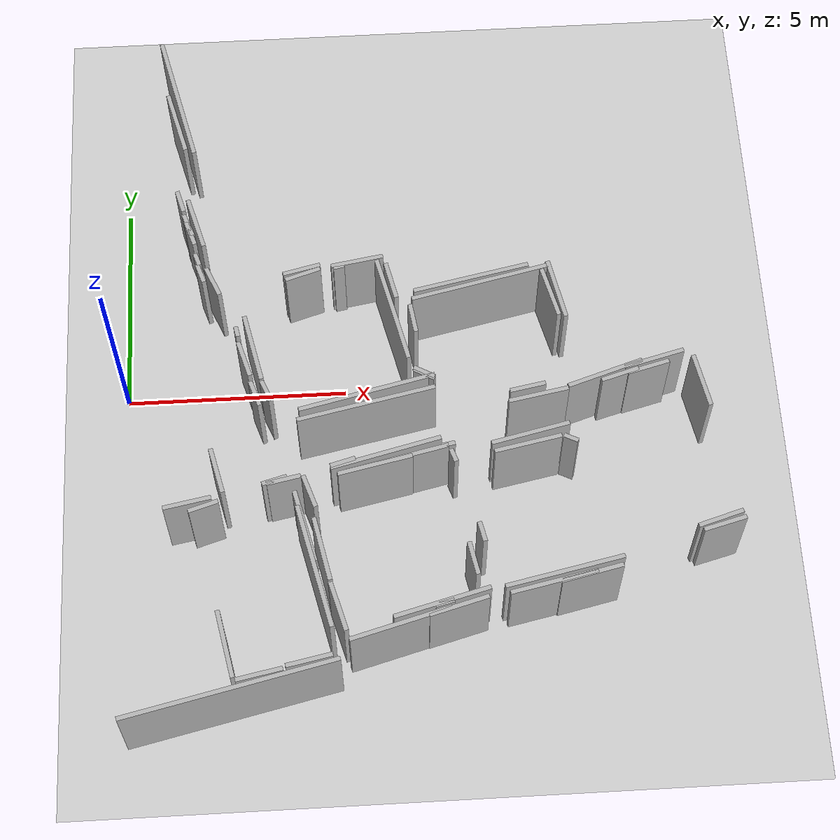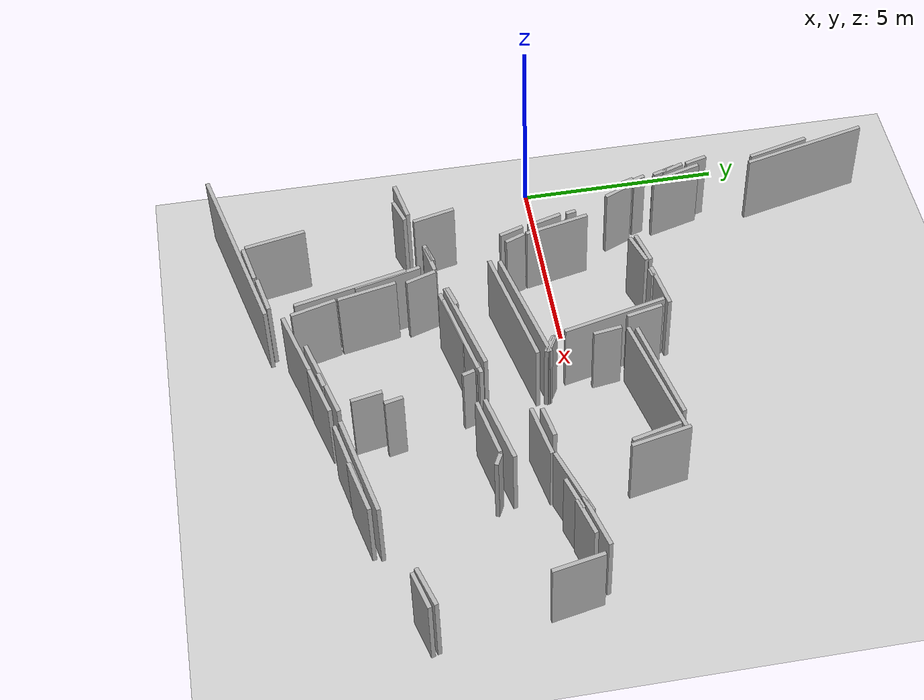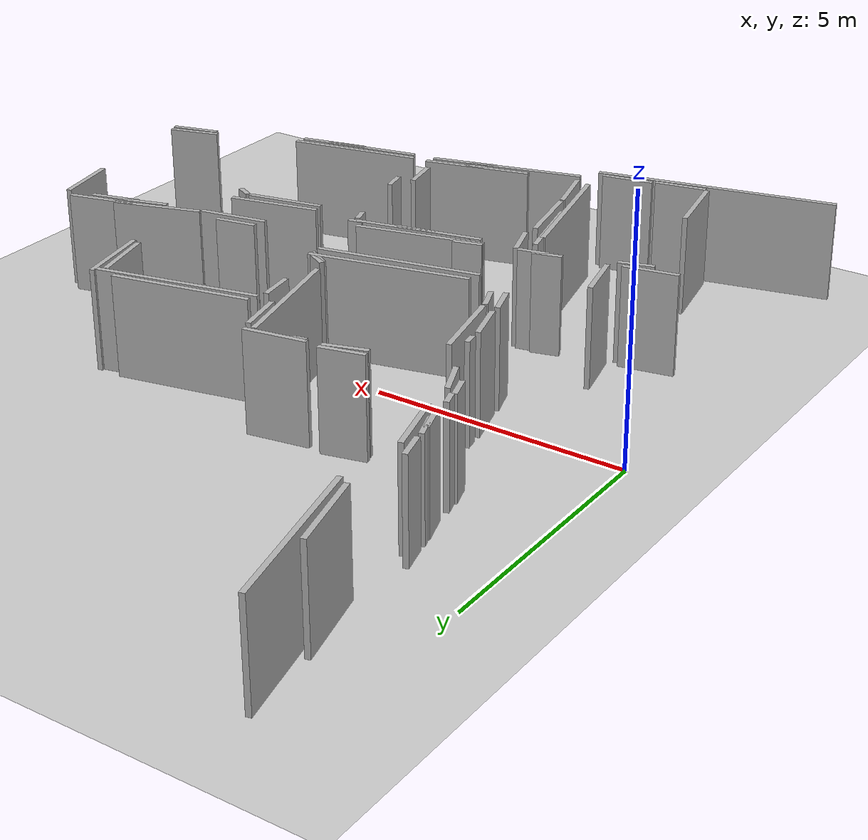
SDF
<sdf version="1.6">
 <world name="slam_world">
  <model name="ground_plane">
   <static>true</static>
   <link name="link">
    <collision name="collision">
     <geometry><plane><normal>0 0 1</normal><size>100 100</size></plane></geometry>
    </collision>
    <visual name="visual">
     <geometry><plane><normal>0 0 1</normal><size>100 100</size></plane></geometry>
     <material>
      <ambient>0.8 0.8 0.8 1</ambient>
      <diffuse>0.8 0.8 0.8 1</diffuse>
      <specular>0.8 0.8 0.8 1</specular>
     </material>
    </visual>
   </link>
  </model>
  <model name="wall_1">
   <static>true</static>
   <pose>4.885000000000002 -2.665 1.0 0 0 0.2662520491509254</pose>
   <link name="link">
    <collision name="collision"><geometry><box><size>0.570087712549569 0.1 2.0</size></box></geometry></collision>
    <visual name="visual">
     <geometry><box><size>0.570087712549569 0.1 2.0</size></box></geometry>
     <material>
      <ambient>0.5 0.5 0.5 1</ambient>
      <diffuse>0.7 0.7 0.7 1</diffuse>
      <specular>0.1 0.1 0.1 1</specular>
     </material>
    </visual>
   </link>
  </model>
  <model name="wall_5">
   <static>true</static>
   <pose>13.035000000000004 -4.565 1.0 0 0 0.25732371497108864</pose>
   <link name="link">
    <collision name="collision"><geometry><box><size>0.982344135219425 0.1 2.0</size></box></geometry></collision>
    <visual name="visual">
     <geometry><box><size>0.982344135219425 0.1 2.0</size></box></geometry>
     <material>
      <ambient>0.5 0.5 0.5 1</ambient>
      <diffuse>0.7 0.7 0.7 1</diffuse>
      <specular>0.1 0.1 0.1 1</specular>
     </material>
    </visual>
   </link>
  </model>
  <model name="wall_7">
   <static>true</static>
   <pose>5.960000000000001 -6.44 1.0 0 0 0.2662520491509254</pose>
   <link name="link">
    <collision name="collision"><geometry><box><size>2.280350850198276 0.1 2.0</size></box></geometry></collision>
    <visual name="visual">
     <geometry><box><size>2.280350850198276 0.1 2.0</size></box></geometry>
     <material>
      <ambient>0.5 0.5 0.5 1</ambient>
      <diffuse>0.7 0.7 0.7 1</diffuse>
      <specular>0.1 0.1 0.1 1</specular>
     </material>
    </visual>
   </link>
  </model>
  <model name="wall_10">
   <static>true</static>
   <pose>4.185000000000002 -5.040000000000001 1.0 0 0 -1.3426936985149538</pose>
   <link name="link">
    <collision name="collision"><geometry><box><size>2.874456470360962 0.1 2.0</size></box></geometry></collision>
    <visual name="visual">
     <geometry><box><size>2.874456470360962 0.1 2.0</size></box></geometry>
     <material>
      <ambient>0.5 0.5 0.5 1</ambient>
      <diffuse>0.7 0.7 0.7 1</diffuse>
      <specular>0.1 0.1 0.1 1</specular>
     </material>
    </visual>
   </link>
  </model>
  <model name="wall_11">
   <static>true</static>
   <pose>9.510000000000002 -5.465 1.0 0 0 0.20846521837998772</pose>
   <link name="link">
    <collision name="collision">
     <geometry><box><size>2.6575364531836625 0.1 2.0</size></box></geometry>
    </collision>
    <visual name="visual">
     <geometry><box><size>2.6575364531836625 0.1 2.0</size></box></geometry>
     <material>
      <ambient>0.5 0.5 0.5 1</ambient>
      <diffuse>0.7 0.7 0.7 1</diffuse>
      <specular>0.1 0.1 0.1 1</specular>
     </material>
    </visual>
   </link>
  </model>
  <model name="wall_19">
   <static>true</static>
   <pose>6.160000000000002 1.0850000000000009 1.0 0 0 -1.3397056595989996</pose>
   <link name="link">
    <collision name="collision">
     <geometry><box><size>2.6196373794859475 0.1 2.0</size></box></geometry>
    </collision>
    <visual name="visual">
     <geometry><box><size>2.6196373794859475 0.1 2.0</size></box></geometry>
     <material>
      <ambient>0.5 0.5 0.5 1</ambient>
      <diffuse>0.7 0.7 0.7 1</diffuse>
      <specular>0.1 0.1 0.1 1</specular>
     </material>
    </visual>
   </link>
  </model>
  <model name="wall_23">
   <static>true</static>
   <pose>11.135000000000002 -0.8650000000000002 1.0 0 0 0.2860514417173182</pose>
   <link name="link">
    <collision name="collision">
     <geometry><box><size>0.8860022573334675 0.1 2.0</size></box></geometry>
    </collision>
    <visual name="visual">
     <geometry><box><size>0.8860022573334675 0.1 2.0</size></box></geometry>
     <material>
      <ambient>0.5 0.5 0.5 1</ambient>
      <diffuse>0.7 0.7 0.7 1</diffuse>
      <specular>0.1 0.1 0.1 1</specular>
     </material>
    </visual>
   </link>
  </model>
  <model name="wall_25">
   <static>true</static>
   <pose>10.085 -5.540000000000001 1.0 0 0 0.21866894587394195</pose>
   <link name="link">
    <collision name="collision">
     <geometry><box><size>1.3829316685939332 0.1 2.0</size></box></geometry>
    </collision>
    <visual name="visual">
     <geometry><box><size>1.3829316685939332 0.1 2.0</size></box></geometry>
     <material>
      <ambient>0.5 0.5 0.5 1</ambient>
      <diffuse>0.7 0.7 0.7 1</diffuse>
      <specular>0.1 0.1 0.1 1</specular>
     </material>
    </visual>
   </link>
  </model>
  <model name="wall_26">
   <static>true</static>
   <pose>11.935000000000002 -0.5150000000000006 1.0 0 0 0.2536740961386427</pose>
   <link name="link">
    <collision name="collision">
     <geometry><box><size>1.3946325680981353 0.1 2.0</size></box></geometry>
    </collision>
    <visual name="visual">
     <geometry><box><size>1.3946325680981353 0.1 2.0</size></box></geometry>
     <material>
      <ambient>0.5 0.5 0.5 1</ambient>
      <diffuse>0.7 0.7 0.7 1</diffuse>
      <specular>0.1 0.1 0.1 1</specular>
     </material>
    </visual>
   </link>
  </model>
  <model name="wall_27">
   <static>true</static>
   <pose>1.3100000000000023 6.385 1.0 0 0 -1.3182420510168371</pose>
   <link name="link">
    <collision name="collision">
     <geometry><box><size>1.6007810593582121 0.1 2.0</size></box></geometry>
    </collision>
    <visual name="visual">
     <geometry><box><size>1.6007810593582121 0.1 2.0</size></box></geometry>
     <material>
      <ambient>0.5 0.5 0.5 1</ambient>
      <diffuse>0.7 0.7 0.7 1</diffuse>
      <specular>0.1 0.1 0.1 1</specular>
     </material>
    </visual>
   </link>
  </model>
  <model name="wall_28">
   <static>true</static>
   <pose>9.060000000000002 -1.0650000000000004 1.0 0 0 0.18534794999569476</pose>
   <link name="link">
    <collision name="collision">
     <geometry><box><size>0.8139410298049854 0.1 2.0</size></box></geometry>
    </collision>
    <visual name="visual">
     <geometry><box><size>0.8139410298049854 0.1 2.0</size></box></geometry>
     <material>
      <ambient>0.5 0.5 0.5 1</ambient>
      <diffuse>0.7 0.7 0.7 1</diffuse>
      <specular>0.1 0.1 0.1 1</specular>
     </material>
    </visual>
   </link>
  </model>
  <model name="wall_29">
   <static>true</static>
   <pose>3.0100000000000016 -0.8900000000000006 1.0 0 0 -1.2490457723982544</pose>
   <link name="link">
    <collision name="collision"><geometry><box><size>0.632455532033676 0.1 2.0</size></box></geometry></collision>
    <visual name="visual">
     <geometry><box><size>0.632455532033676 0.1 2.0</size></box></geometry>
     <material>
      <ambient>0.5 0.5 0.5 1</ambient>
      <diffuse>0.7 0.7 0.7 1</diffuse>
      <specular>0.1 0.1 0.1 1</specular>
     </material>
    </visual>
   </link>
  </model>
  <model name="wall_30">
   <static>true</static>
   <pose>7.210000000000001 -2.365 1.0 0 0 0.16514867741462683</pose>
   <link name="link">
    <collision name="collision"><geometry><box><size>0.304138126514911 0.1 2.0</size></box></geometry></collision>
    <visual name="visual">
     <geometry><box><size>0.304138126514911 0.1 2.0</size></box></geometry>
     <material>
      <ambient>0.5 0.5 0.5 1</ambient>
      <diffuse>0.7 0.7 0.7 1</diffuse>
      <specular>0.1 0.1 0.1 1</specular>
     </material>
    </visual>
   </link>
  </model>
  <model name="wall_31">
   <static>true</static>
   <pose>1.3350000000000009 7.085000000000001 1.0 0 0 -1.3370531459259951</pose>
   <link name="link">
    <collision name="collision">
     <geometry><box><size>3.2380549717384355 0.1 2.0</size></box></geometry>
    </collision>
    <visual name="visual">
     <geometry><box><size>3.2380549717384355 0.1 2.0</size></box></geometry>
     <material>
      <ambient>0.5 0.5 0.5 1</ambient>
      <diffuse>0.7 0.7 0.7 1</diffuse>
      <specular>0.1 0.1 0.1 1</specular>
     </material>
    </visual>
   </link>
  </model>
  <model name="wall_33">
   <static>true</static>
   <pose>2.335000000000001 -7.665000000000001 1.0 0 0 0.22208190190548016</pose>
   <link name="link">
    <collision name="collision"><geometry><box><size>4.767074574621211 0.1 2.0</size></box></geometry></collision>
    <visual name="visual">
     <geometry><box><size>4.767074574621211 0.1 2.0</size></box></geometry>
     <material>
      <ambient>0.5 0.5 0.5 1</ambient>
      <diffuse>0.7 0.7 0.7 1</diffuse>
      <specular>0.1 0.1 0.1 1</specular>
     </material>
    </visual>
   </link>
  </model>
  <model name="wall_34">
   <static>true</static>
   <pose>6.860000000000001 -6.015000000000001 1.0 0 0 0.25615138256560344</pose>
   <link name="link">
    <collision name="collision"><geometry><box><size>2.170829334609241 0.1 2.0</size></box></geometry></collision>
    <visual name="visual">
     <geometry><box><size>2.170829334609241 0.1 2.0</size></box></geometry>
     <material>
      <ambient>0.5 0.5 0.5 1</ambient>
      <diffuse>0.7 0.7 0.7 1</diffuse>
      <specular>0.1 0.1 0.1 1</specular>
     </material>
    </visual>
   </link>
  </model>
  <model name="wall_37">
   <static>true</static>
   <pose>5.585000000000001 -2.7650000000000006 1.0 0 0 0.20902294280626463</pose>
   <link name="link">
    <collision name="collision"><geometry><box><size>1.6867127793433 0.1 2.0</size></box></geometry></collision>
    <visual name="visual">
     <geometry><box><size>1.6867127793433 0.1 2.0</size></box></geometry>
     <material>
      <ambient>0.5 0.5 0.5 1</ambient>
      <diffuse>0.7 0.7 0.7 1</diffuse>
      <specular>0.1 0.1 0.1 1</specular>
     </material>
    </visual>
   </link>
  </model>
  <model name="wall_39">
   <static>true</static>
   <pose>5.460000000000001 -1.2650000000000006 1.0 0 0 0.20668321848424925</pose>
   <link name="link">
    <collision name="collision"><geometry><box><size>3.167412192942371 0.1 2.0</size></box></geometry></collision>
    <visual name="visual">
     <geometry><box><size>3.167412192942371 0.1 2.0</size></box></geometry>
     <material>
      <ambient>0.5 0.5 0.5 1</ambient>
      <diffuse>0.7 0.7 0.7 1</diffuse>
      <specular>0.1 0.1 0.1 1</specular>
     </material>
    </visual>
   </link>
  </model>
  <model name="wall_40">
   <static>true</static>
   <pose>4.135000000000002 2.210000000000001 1.0 0 0 0.23109066719589708</pose>
   <link name="link">
    <collision name="collision"><geometry><box><size>0.873212459828649 0.1 2.0</size></box></geometry></collision>
    <visual name="visual">
     <geometry><box><size>0.873212459828649 0.1 2.0</size></box></geometry>
     <material>
      <ambient>0.5 0.5 0.5 1</ambient>
      <diffuse>0.7 0.7 0.7 1</diffuse>
      <specular>0.1 0.1 0.1 1</specular>
     </material>
    </visual>
   </link>
  </model>
  <model name="wall_41">
   <static>true</static>
   <pose>3.3850000000000016 -3.0150000000000006 1.0 0 0 0.2662520491509254</pose>
   <link name="link">
    <collision name="collision"><geometry><box><size>0.570087712549569 0.1 2.0</size></box></geometry></collision>
    <visual name="visual">
     <geometry><box><size>0.570087712549569 0.1 2.0</size></box></geometry>
     <material>
      <ambient>0.5 0.5 0.5 1</ambient>
      <diffuse>0.7 0.7 0.7 1</diffuse>
      <specular>0.1 0.1 0.1 1</specular>
     </material>
    </visual>
   </link>
  </model>
  <model name="wall_42">
   <static>true</static>
   <pose>5.410000000000002 2.3599999999999994 1.0 0 0 0.16514867741462683</pose>
   <link name="link">
    <collision name="collision"><geometry><box><size>1.216552506059644 0.1 2.0</size></box></geometry></collision>
    <visual name="visual">
     <geometry><box><size>1.216552506059644 0.1 2.0</size></box></geometry>
     <material>
      <ambient>0.5 0.5 0.5 1</ambient>
      <diffuse>0.7 0.7 0.7 1</diffuse>
      <specular>0.1 0.1 0.1 1</specular>
     </material>
    </visual>
   </link>
  </model>
  <model name="wall_43">
   <static>true</static>
   <pose>4.660000000000002 -5.99 1.0 0 0 -1.3045442776439713</pose>
   <link name="link">
    <collision name="collision"><geometry><box><size>1.140175425099138 0.1 2.0</size></box></geometry></collision>
    <visual name="visual">
     <geometry><box><size>1.140175425099138 0.1 2.0</size></box></geometry>
     <material>
      <ambient>0.5 0.5 0.5 1</ambient>
      <diffuse>0.7 0.7 0.7 1</diffuse>
      <specular>0.1 0.1 0.1 1</specular>
     </material>
    </visual>
   </link>
  </model>
  <model name="wall_44">
   <static>true</static>
   <pose>7.310000000000002 -2.6400000000000006 1.0 0 0 -1.2490457723982544</pose>
   <link name="link">
    <collision name="collision"><geometry><box><size>0.316227766016838 0.1 2.0</size></box></geometry></collision>
    <visual name="visual">
     <geometry><box><size>0.316227766016838 0.1 2.0</size></box></geometry>
     <material>
      <ambient>0.5 0.5 0.5 1</ambient>
      <diffuse>0.7 0.7 0.7 1</diffuse>
      <specular>0.1 0.1 0.1 1</specular>
     </material>
    </visual>
   </link>
  </model>
  <model name="wall_45">
   <static>true</static>
   <pose>10.810000000000002 -0.8150000000000004 1.0 0 0 0.3129012278803845</pose>
   <link name="link">
    <collision name="collision">
     <geometry><box><size>1.7867568385205637 0.1 2.0</size></box></geometry>
    </collision>
    <visual name="visual">
     <geometry><box><size>1.7867568385205637 0.1 2.0</size></box></geometry>
     <material>
      <ambient>0.5 0.5 0.5 1</ambient>
      <diffuse>0.7 0.7 0.7 1</diffuse>
      <specular>0.1 0.1 0.1 1</specular>
     </material>
    </visual>
   </link>
  </model>
  <model name="wall_48">
   <static>true</static>
   <pose>11.785000000000004 -0.7149999999999999 1.0 0 0 0.25732371497108864</pose>
   <link name="link">
    <collision name="collision"><geometry><box><size>0.982344135219425 0.1 2.0</size></box></geometry></collision>
    <visual name="visual">
     <geometry><box><size>0.982344135219425 0.1 2.0</size></box></geometry>
     <material>
      <ambient>0.5 0.5 0.5 1</ambient>
      <diffuse>0.7 0.7 0.7 1</diffuse>
      <specular>0.1 0.1 0.1 1</specular>
     </material>
    </visual>
   </link>
  </model>
  <model name="wall_49">
   <static>true</static>
   <pose>5.835000000000001 -2.49 1.0 0 0 0.2401710078601731</pose>
   <link name="link">
    <collision name="collision"><geometry><box><size>2.522399651125888 0.1 2.0</size></box></geometry></collision>
    <visual name="visual">
     <geometry><box><size>2.522399651125888 0.1 2.0</size></box></geometry>
     <material>
      <ambient>0.5 0.5 0.5 1</ambient>
      <diffuse>0.7 0.7 0.7 1</diffuse>
      <specular>0.1 0.1 0.1 1</specular>
     </material>
    </visual>
   </link>
  </model>
  <model name="wall_51">
   <static>true</static>
   <pose>7.810000000000002 -4.465000000000001 1.0 0 0 -1.3521273809209546</pose>
   <link name="link">
    <collision name="collision">
     <geometry><box><size>0.4609772228646444 0.1 2.0</size></box></geometry>
    </collision>
    <visual name="visual">
     <geometry><box><size>0.4609772228646444 0.1 2.0</size></box></geometry>
     <material>
      <ambient>0.5 0.5 0.5 1</ambient>
      <diffuse>0.7 0.7 0.7 1</diffuse>
      <specular>0.1 0.1 0.1 1</specular>
     </material>
    </visual>
   </link>
  </model>
  <model name="wall_52">
   <static>true</static>
   <pose>7.985000000000003 1.7850000000000001 1.0 0 0 0.20464180982977792</pose>
   <link name="link">
    <collision name="collision">
     <geometry><box><size>2.7064737205448717 0.1 2.0</size></box></geometry>
    </collision>
    <visual name="visual">
     <geometry><box><size>2.7064737205448717 0.1 2.0</size></box></geometry>
     <material>
      <ambient>0.5 0.5 0.5 1</ambient>
      <diffuse>0.7 0.7 0.7 1</diffuse>
      <specular>0.1 0.1 0.1 1</specular>
     </material>
    </visual>
   </link>
  </model>
  <model name="wall_53">
   <static>true</static>
   <pose>9.035 -2.1900000000000004 1.0 0 0 0.2247111684146427</pose>
   <link name="link">
    <collision name="collision"><geometry><box><size>1.795132307101624 0.1 2.0</size></box></geometry></collision>
    <visual name="visual">
     <geometry><box><size>1.795132307101624 0.1 2.0</size></box></geometry>
     <material>
      <ambient>0.5 0.5 0.5 1</ambient>
      <diffuse>0.7 0.7 0.7 1</diffuse>
      <specular>0.1 0.1 0.1 1</specular>
     </material>
    </visual>
   </link>
  </model>
  <model name="wall_57">
   <static>true</static>
   <pose>2.785000000000002 -0.015000000000000568 1.0 0 0 -1.2847448850775784</pose>
   <link name="link">
    <collision name="collision">
     <geometry><box><size>0.8860022573334675 0.1 2.0</size></box></geometry>
    </collision>
    <visual name="visual">
     <geometry><box><size>0.8860022573334675 0.1 2.0</size></box></geometry>
     <material>
      <ambient>0.5 0.5 0.5 1</ambient>
      <diffuse>0.7 0.7 0.7 1</diffuse>
      <specular>0.1 0.1 0.1 1</specular>
     </material>
    </visual>
   </link>
  </model>
  <model name="wall_58">
   <static>true</static>
   <pose>4.010000000000002 -7.140000000000001 1.0 0 0 0.19739555984988075</pose>
   <link name="link">
    <collision name="collision"><geometry><box><size>1.019803902718557 0.1 2.0</size></box></geometry></collision>
    <visual name="visual">
     <geometry><box><size>1.019803902718557 0.1 2.0</size></box></geometry>
     <material>
      <ambient>0.5 0.5 0.5 1</ambient>
      <diffuse>0.7 0.7 0.7 1</diffuse>
      <specular>0.1 0.1 0.1 1</specular>
     </material>
    </visual>
   </link>
  </model>
  <model name="wall_59">
   <static>true</static>
   <pose>8.185000000000002 1.6600000000000001 1.0 0 0 0.21866894587394195</pose>
   <link name="link">
    <collision name="collision">
     <geometry><box><size>3.2268405600525107 0.1 2.0</size></box></geometry>
    </collision>
    <visual name="visual">
     <geometry><box><size>3.2268405600525107 0.1 2.0</size></box></geometry>
     <material>
      <ambient>0.5 0.5 0.5 1</ambient>
      <diffuse>0.7 0.7 0.7 1</diffuse>
      <specular>0.1 0.1 0.1 1</specular>
     </material>
    </visual>
   </link>
  </model>
  <model name="wall_62">
   <static>true</static>
   <pose>1.8350000000000009 2.2349999999999994 1.0 0 0 -1.2490457723982544</pose>
   <link name="link">
    <collision name="collision">
     <geometry><box><size>0.47434164902525694 0.1 2.0</size></box></geometry>
    </collision>
    <visual name="visual">
     <geometry><box><size>0.47434164902525694 0.1 2.0</size></box></geometry>
     <material>
      <ambient>0.5 0.5 0.5 1</ambient>
      <diffuse>0.7 0.7 0.7 1</diffuse>
      <specular>0.1 0.1 0.1 1</specular>
     </material>
    </visual>
   </link>
  </model>
  <model name="wall_63">
   <static>true</static>
   <pose>5.485000000000001 -0.9900000000000002 1.0 0 0 0.225601243836024</pose>
   <link name="link">
    <collision name="collision">
     <geometry><box><size>3.1292970456637703 0.1 2.0</size></box></geometry>
    </collision>
    <visual name="visual">
     <geometry><box><size>3.1292970456637703 0.1 2.0</size></box></geometry>
     <material>
      <ambient>0.5 0.5 0.5 1</ambient>
      <diffuse>0.7 0.7 0.7 1</diffuse>
      <specular>0.1 0.1 0.1 1</specular>
     </material>
    </visual>
   </link>
  </model>
  <model name="wall_64">
   <static>true</static>
   <pose>1.6100000000000012 3.3100000000000005 1.0 0 0 -1.2490457723982544</pose>
   <link name="link">
    <collision name="collision"><geometry><box><size>0.632455532033676 0.1 2.0</size></box></geometry></collision>
    <visual name="visual">
     <geometry><box><size>0.632455532033676 0.1 2.0</size></box></geometry>
     <material>
      <ambient>0.5 0.5 0.5 1</ambient>
      <diffuse>0.7 0.7 0.7 1</diffuse>
      <specular>0.1 0.1 0.1 1</specular>
     </material>
    </visual>
   </link>
  </model>
  <model name="wall_65">
   <static>true</static>
   <pose>2.960000000000001 -7.390000000000001 1.0 0 0 0.19739555984988075</pose>
   <link name="link">
    <collision name="collision"><geometry><box><size>1.019803902718557 0.1 2.0</size></box></geometry></collision>
    <visual name="visual">
     <geometry><box><size>1.019803902718557 0.1 2.0</size></box></geometry>
     <material>
      <ambient>0.5 0.5 0.5 1</ambient>
      <diffuse>0.7 0.7 0.7 1</diffuse>
      <specular>0.1 0.1 0.1 1</specular>
     </material>
    </visual>
   </link>
  </model>
  <model name="wall_66">
   <static>true</static>
   <pose>9.260000000000002 -5.69 1.0 0 0 0.20749622643520266</pose>
   <link name="link">
    <collision name="collision"><geometry><box><size>1.94164878389476 0.1 2.0</size></box></geometry></collision>
    <visual name="visual">
     <geometry><box><size>1.94164878389476 0.1 2.0</size></box></geometry>
     <material>
      <ambient>0.5 0.5 0.5 1</ambient>
      <diffuse>0.7 0.7 0.7 1</diffuse>
      <specular>0.1 0.1 0.1 1</specular>
     </material>
    </visual>
   </link>
  </model>
  <model name="wall_68">
   <static>true</static>
   <pose>3.2600000000000016 -0.8399999999999999 1.0 0 0 -1.1902899496825317</pose>
   <link name="link">
    <collision name="collision">
     <geometry><box><size>0.5385164807134504 0.1 2.0</size></box></geometry>
    </collision>
    <visual name="visual">
     <geometry><box><size>0.5385164807134504 0.1 2.0</size></box></geometry>
     <material>
      <ambient>0.5 0.5 0.5 1</ambient>
      <diffuse>0.7 0.7 0.7 1</diffuse>
      <specular>0.1 0.1 0.1 1</specular>
     </material>
    </visual>
   </link>
  </model>
  <model name="wall_72">
   <static>true</static>
   <pose>3.585000000000001 -3.0150000000000006 1.0 0 0 0.19739555984988075</pose>
   <link name="link">
    <collision name="collision">
     <geometry><box><size>0.7648529270389178 0.1 2.0</size></box></geometry>
    </collision>
    <visual name="visual">
     <geometry><box><size>0.7648529270389178 0.1 2.0</size></box></geometry>
     <material>
      <ambient>0.5 0.5 0.5 1</ambient>
      <diffuse>0.7 0.7 0.7 1</diffuse>
      <specular>0.1 0.1 0.1 1</specular>
     </material>
    </visual>
   </link>
  </model>
  <model name="wall_73">
   <static>true</static>
   <pose>1.7350000000000012 3.585000000000001 1.0 0 0 -1.297787623708186</pose>
   <link name="link">
    <collision name="collision">
     <geometry><box><size>1.2980754985747172 0.1 2.0</size></box></geometry>
    </collision>
    <visual name="visual">
     <geometry><box><size>1.2980754985747172 0.1 2.0</size></box></geometry>
     <material>
      <ambient>0.5 0.5 0.5 1</ambient>
      <diffuse>0.7 0.7 0.7 1</diffuse>
      <specular>0.1 0.1 0.1 1</specular>
     </material>
    </visual>
   </link>
  </model>
  <model name="wall_74">
   <static>true</static>
   <pose>4.360000000000001 -4.665000000000001 1.0 0 0 -1.366778347202348</pose>
   <link name="link">
    <collision name="collision"><geometry><box><size>1.480709289496085 0.1 2.0</size></box></geometry></collision>
    <visual name="visual">
     <geometry><box><size>1.480709289496085 0.1 2.0</size></box></geometry>
     <material>
      <ambient>0.5 0.5 0.5 1</ambient>
      <diffuse>0.7 0.7 0.7 1</diffuse>
      <specular>0.1 0.1 0.1 1</specular>
     </material>
    </visual>
   </link>
  </model>
  <model name="wall_76">
   <static>true</static>
   <pose>9.285 -1.2650000000000006 1.0 0 0 0.18311081726248413</pose>
   <link name="link">
    <collision name="collision">
     <geometry><box><size>1.3729530217745982 0.1 2.0</size></box></geometry>
    </collision>
    <visual name="visual">
     <geometry><box><size>1.3729530217745982 0.1 2.0</size></box></geometry>
     <material>
      <ambient>0.5 0.5 0.5 1</ambient>
      <diffuse>0.7 0.7 0.7 1</diffuse>
      <specular>0.1 0.1 0.1 1</specular>
     </material>
    </visual>
   </link>
  </model>
  <model name="wall_78">
   <static>true</static>
   <pose>4.985000000000001 2.2349999999999994 1.0 0 0 0.19739555984988075</pose>
   <link name="link">
    <collision name="collision">
     <geometry><box><size>0.25495097567963926 0.1 2.0</size></box></geometry>
    </collision>
    <visual name="visual">
     <geometry><box><size>0.25495097567963926 0.1 2.0</size></box></geometry>
     <material>
      <ambient>0.5 0.5 0.5 1</ambient>
      <diffuse>0.7 0.7 0.7 1</diffuse>
      <specular>0.1 0.1 0.1 1</specular>
     </material>
    </visual>
   </link>
  </model>
  <model name="wall_79">
   <static>true</static>
   <pose>6.160000000000002 1.8100000000000005 1.0 0 0 -1.3521273809209546</pose>
   <link name="link">
    <collision name="collision">
     <geometry><box><size>0.9219544457292888 0.1 2.0</size></box></geometry>
    </collision>
    <visual name="visual">
     <geometry><box><size>0.9219544457292888 0.1 2.0</size></box></geometry>
     <material>
      <ambient>0.5 0.5 0.5 1</ambient>
      <diffuse>0.7 0.7 0.7 1</diffuse>
      <specular>0.1 0.1 0.1 1</specular>
     </material>
    </visual>
   </link>
  </model>
  <model name="wall_80">
   <static>true</static>
   <pose>1.4850000000000012 -3.4400000000000004 1.0 0 0 0.18822150530477078</pose>
   <link name="link">
    <collision name="collision">
     <geometry><box><size>1.0688779163215976 0.1 2.0</size></box></geometry>
    </collision>
    <visual name="visual">
     <geometry><box><size>1.0688779163215976 0.1 2.0</size></box></geometry>
     <material>
      <ambient>0.5 0.5 0.5 1</ambient>
      <diffuse>0.7 0.7 0.7 1</diffuse>
      <specular>0.1 0.1 0.1 1</specular>
     </material>
    </visual>
   </link>
  </model>
  <model name="wall_83">
   <static>true</static>
   <pose>8.96 -2.4400000000000004 1.0 0 0 0.19739555984988075</pose>
   <link name="link">
    <collision name="collision">
     <geometry><box><size>1.5297058540778357 0.1 2.0</size></box></geometry>
    </collision>
    <visual name="visual">
     <geometry><box><size>1.5297058540778357 0.1 2.0</size></box></geometry>
     <material>
      <ambient>0.5 0.5 0.5 1</ambient>
      <diffuse>0.7 0.7 0.7 1</diffuse>
      <specular>0.1 0.1 0.1 1</specular>
     </material>
    </visual>
   </link>
  </model>
  <model name="wall_84">
   <static>true</static>
   <pose>2.6350000000000016 0.6850000000000005 1.0 0 0 -1.373400766945016</pose>
   <link name="link">
    <collision name="collision">
     <geometry><box><size>0.25495097567963926 0.1 2.0</size></box></geometry>
    </collision>
    <visual name="visual">
     <geometry><box><size>0.25495097567963926 0.1 2.0</size></box></geometry>
     <material>
      <ambient>0.5 0.5 0.5 1</ambient>
      <diffuse>0.7 0.7 0.7 1</diffuse>
      <specular>0.1 0.1 0.1 1</specular>
     </material>
    </visual>
   </link>
  </model>
  <model name="wall_85">
   <static>true</static>
   <pose>7.585000000000001 -5.065 1.0 0 0 -1.373400766945016</pose>
   <link name="link">
    <collision name="collision">
     <geometry><box><size>0.7648529270389178 0.1 2.0</size></box></geometry>
    </collision>
    <visual name="visual">
     <geometry><box><size>0.7648529270389178 0.1 2.0</size></box></geometry>
     <material>
      <ambient>0.5 0.5 0.5 1</ambient>
      <diffuse>0.7 0.7 0.7 1</diffuse>
      <specular>0.1 0.1 0.1 1</specular>
     </material>
    </visual>
   </link>
  </model>
  <model name="wall_91">
   <static>true</static>
   <pose>6.785000000000002 -0.5649999999999995 1.0 0 0 -0.507098504392337</pose>
   <link name="link">
    <collision name="collision">
     <geometry><box><size>0.5147815070493501 0.1 2.0</size></box></geometry>
    </collision>
    <visual name="visual">
     <geometry><box><size>0.5147815070493501 0.1 2.0</size></box></geometry>
     <material>
      <ambient>0.5 0.5 0.5 1</ambient>
      <diffuse>0.7 0.7 0.7 1</diffuse>
      <specular>0.1 0.1 0.1 1</specular>
     </material>
    </visual>
   </link>
  </model>
  <model name="wall_94">
   <static>true</static>
   <pose>2.110000000000001 2.01 1.0 0 0 -1.1659045405098132</pose>
   <link name="link">
    <collision name="collision">
     <geometry><box><size>0.7615773105863909 0.1 2.0</size></box></geometry>
    </collision>
    <visual name="visual">
     <geometry><box><size>0.7615773105863909 0.1 2.0</size></box></geometry>
     <material>
      <ambient>0.5 0.5 0.5 1</ambient>
      <diffuse>0.7 0.7 0.7 1</diffuse>
      <specular>0.1 0.1 0.1 1</specular>
     </material>
    </visual>
   </link>
  </model>
  <model name="wall_95">
   <static>true</static>
   <pose>6.910000000000002 -6.040000000000001 1.0 0 0 0.24497866312686414</pose>
   <link name="link">
    <collision name="collision">
     <geometry><box><size>0.41231056256176607 0.1 2.0</size></box></geometry>
    </collision>
    <visual name="visual">
     <geometry><box><size>0.41231056256176607 0.1 2.0</size></box></geometry>
     <material>
      <ambient>0.5 0.5 0.5 1</ambient>
      <diffuse>0.7 0.7 0.7 1</diffuse>
      <specular>0.1 0.1 0.1 1</specular>
     </material>
    </visual>
   </link>
  </model>
  <model name="wall_97">
   <static>true</static>
   <pose>6.610000000000001 0.8100000000000005 1.0 0 0 -1.4288992721907328</pose>
   <link name="link">
    <collision name="collision">
     <geometry><box><size>0.7071067811865476 0.1 2.0</size></box></geometry>
    </collision>
    <visual name="visual">
     <geometry><box><size>0.7071067811865476 0.1 2.0</size></box></geometry>
     <material>
      <ambient>0.5 0.5 0.5 1</ambient>
      <diffuse>0.7 0.7 0.7 1</diffuse>
      <specular>0.1 0.1 0.1 1</specular>
     </material>
    </visual>
   </link>
  </model>
  <model name="wall_98">
   <static>true</static>
   <pose>2.985000000000001 0.2599999999999998 1.0 0 0 -1.3554386270971586</pose>
   <link name="link">
    <collision name="collision"><geometry><box><size>1.63783393541592 0.1 2.0</size></box></geometry></collision>
    <visual name="visual">
     <geometry><box><size>1.63783393541592 0.1 2.0</size></box></geometry>
     <material>
      <ambient>0.5 0.5 0.5 1</ambient>
      <diffuse>0.7 0.7 0.7 1</diffuse>
      <specular>0.1 0.1 0.1 1</specular>
     </material>
    </visual>
   </link>
  </model>
  <model name="wall_99">
   <static>true</static>
   <pose>9.760000000000002 1.3100000000000005 1.0 0 0 -1.3258176636680326</pose>
   <link name="link">
    <collision name="collision">
     <geometry><box><size>1.2369316876852983 0.1 2.0</size></box></geometry>
    </collision>
    <visual name="visual">
     <geometry><box><size>1.2369316876852983 0.1 2.0</size></box></geometry>
     <material>
      <ambient>0.5 0.5 0.5 1</ambient>
      <diffuse>0.7 0.7 0.7 1</diffuse>
      <specular>0.1 0.1 0.1 1</specular>
     </material>
    </visual>
   </link>
  </model>
  <model name="wall_102">
   <static>true</static>
   <pose>2.2600000000000016 -6.69 1.0 0 0 -1.373400766945016</pose>
   <link name="link">
    <collision name="collision">
     <geometry><box><size>1.5297058540778357 0.1 2.0</size></box></geometry>
    </collision>
    <visual name="visual">
     <geometry><box><size>1.5297058540778357 0.1 2.0</size></box></geometry>
     <material>
      <ambient>0.5 0.5 0.5 1</ambient>
      <diffuse>0.7 0.7 0.7 1</diffuse>
      <specular>0.1 0.1 0.1 1</specular>
     </material>
    </visual>
   </link>
  </model>
  <model name="wall_103">
   <static>true</static>
   <pose>6.085000000000001 -2.6400000000000006 1.0 0 0 0.21866894587394195</pose>
   <link name="link">
    <collision name="collision"><geometry><box><size>2.304886114323222 0.1 2.0</size></box></geometry></collision>
    <visual name="visual">
     <geometry><box><size>2.304886114323222 0.1 2.0</size></box></geometry>
     <material>
      <ambient>0.5 0.5 0.5 1</ambient>
      <diffuse>0.7 0.7 0.7 1</diffuse>
      <specular>0.1 0.1 0.1 1</specular>
     </material>
    </visual>
   </link>
  </model>
  <model name="wall_104">
   <static>true</static>
   <pose>1.8350000000000009 -3.54 1.0 0 0 0.2984989315861793</pose>
   <link name="link">
    <collision name="collision">
     <geometry><box><size>0.6800735254367722 0.1 2.0</size></box></geometry>
    </collision>
    <visual name="visual">
     <geometry><box><size>0.6800735254367722 0.1 2.0</size></box></geometry>
     <material>
      <ambient>0.5 0.5 0.5 1</ambient>
      <diffuse>0.7 0.7 0.7 1</diffuse>
      <specular>0.1 0.1 0.1 1</specular>
     </material>
    </visual>
   </link>
  </model>
  <model name="wall_107">
   <static>true</static>
   <pose>4.135000000000002 -3.3150000000000004 1.0 0 0 -1.2490457723982544</pose>
   <link name="link">
    <collision name="collision">
     <geometry><box><size>0.7905694150420949 0.1 2.0</size></box></geometry>
    </collision>
    <visual name="visual">
     <geometry><box><size>0.7905694150420949 0.1 2.0</size></box></geometry>
     <material>
      <ambient>0.5 0.5 0.5 1</ambient>
      <diffuse>0.7 0.7 0.7 1</diffuse>
      <specular>0.1 0.1 0.1 1</specular>
     </material>
    </visual>
   </link>
  </model>
  <model name="wall_108">
   <static>true</static>
   <pose>7.210000000000001 -6.115 1.0 0 0 0.2629947316809195</pose>
   <link name="link">
    <collision name="collision">
     <geometry><box><size>1.3462912017836262 0.1 2.0</size></box></geometry>
    </collision>
    <visual name="visual">
     <geometry><box><size>1.3462912017836262 0.1 2.0</size></box></geometry>
     <material>
      <ambient>0.5 0.5 0.5 1</ambient>
      <diffuse>0.7 0.7 0.7 1</diffuse>
      <specular>0.1 0.1 0.1 1</specular>
     </material>
    </visual>
   </link>
  </model>
  <model name="wall_109">
   <static>true</static>
   <pose>2.1350000000000016 -2.715 1.0 0 0 -1.3370531459259951</pose>
   <link name="link">
    <collision name="collision">
     <geometry><box><size>1.0793516572461452 0.1 2.0</size></box></geometry>
    </collision>
    <visual name="visual">
     <geometry><box><size>1.0793516572461452 0.1 2.0</size></box></geometry>
     <material>
      <ambient>0.5 0.5 0.5 1</ambient>
      <diffuse>0.7 0.7 0.7 1</diffuse>
      <specular>0.1 0.1 0.1 1</specular>
     </material>
    </visual>
   </link>
  </model>
  <model name="wall_110">
   <static>true</static>
   <pose>4.160000000000002 2.085000000000001 1.0 0 0 0.3028848683749714</pose>
   <link name="link">
    <collision name="collision">
     <geometry><box><size>0.8381527307120106 0.1 2.0</size></box></geometry>
    </collision>
    <visual name="visual">
     <geometry><box><size>0.8381527307120106 0.1 2.0</size></box></geometry>
     <material>
      <ambient>0.5 0.5 0.5 1</ambient>
      <diffuse>0.7 0.7 0.7 1</diffuse>
      <specular>0.1 0.1 0.1 1</specular>
     </material>
    </visual>
   </link>
  </model>
  <model name="wall_113">
   <static>true</static>
   <pose>1.7600000000000016 2.6099999999999994 1.0 0 0 -1.2490457723982544</pose>
   <link name="link">
    <collision name="collision"><geometry><box><size>0.316227766016838 0.1 2.0</size></box></geometry></collision>
    <visual name="visual">
     <geometry><box><size>0.316227766016838 0.1 2.0</size></box></geometry>
     <material>
      <ambient>0.5 0.5 0.5 1</ambient>
      <diffuse>0.7 0.7 0.7 1</diffuse>
      <specular>0.1 0.1 0.1 1</specular>
     </material>
    </visual>
   </link>
  </model>
  <model name="wall_120">
   <static>true</static>
   <pose>12.96 -4.44 1.0 0 0 0.2914567944778671</pose>
   <link name="link">
    <collision name="collision"><geometry><box><size>1.044030650891055 0.1 2.0</size></box></geometry></collision>
    <visual name="visual">
     <geometry><box><size>1.044030650891055 0.1 2.0</size></box></geometry>
     <material>
      <ambient>0.5 0.5 0.5 1</ambient>
      <diffuse>0.7 0.7 0.7 1</diffuse>
      <specular>0.1 0.1 0.1 1</specular>
     </material>
    </visual>
   </link>
  </model>
  <model name="wall_122">
   <static>true</static>
   <pose>9.91 -2.365 1.0 0 0 -0.4636476090008061</pose>
   <link name="link">
    <collision name="collision">
     <geometry><box><size>0.3354101966249685 0.1 2.0</size></box></geometry>
    </collision>
    <visual name="visual">
     <geometry><box><size>0.3354101966249685 0.1 2.0</size></box></geometry>
     <material>
      <ambient>0.5 0.5 0.5 1</ambient>
      <diffuse>0.7 0.7 0.7 1</diffuse>
      <specular>0.1 0.1 0.1 1</specular>
     </material>
    </visual>
   </link>
  </model>
  <model name="wall_130">
   <static>true</static>
   <pose>6.785000000000002 -0.6150000000000002 1.0 0 0 -0.507098504392337</pose>
   <link name="link">
    <collision name="collision">
     <geometry><box><size>0.5147815070493501 0.1 2.0</size></box></geometry>
    </collision>
    <visual name="visual">
     <geometry><box><size>0.5147815070493501 0.1 2.0</size></box></geometry>
     <material>
      <ambient>0.5 0.5 0.5 1</ambient>
      <diffuse>0.7 0.7 0.7 1</diffuse>
      <specular>0.1 0.1 0.1 1</specular>
     </material>
    </visual>
   </link>
  </model>
  <model name="wall_132">
   <static>true</static>
   <pose>1.3850000000000016 4.1850000000000005 1.0 0 0 -1.3045442776439713</pose>
   <link name="link">
    <collision name="collision"><geometry><box><size>0.570087712549569 0.1 2.0</size></box></geometry></collision>
    <visual name="visual">
     <geometry><box><size>0.570087712549569 0.1 2.0</size></box></geometry>
     <material>
      <ambient>0.5 0.5 0.5 1</ambient>
      <diffuse>0.7 0.7 0.7 1</diffuse>
      <specular>0.1 0.1 0.1 1</specular>
     </material>
    </visual>
   </link>
  </model>
  <model name="wall_134">
   <static>true</static>
   <pose>9.91 1.3849999999999998 1.0 0 0 -1.366778347202348</pose>
   <link name="link">
    <collision name="collision"><geometry><box><size>1.480709289496085 0.1 2.0</size></box></geometry></collision>
    <visual name="visual">
     <geometry><box><size>1.480709289496085 0.1 2.0</size></box></geometry>
     <material>
      <ambient>0.5 0.5 0.5 1</ambient>
      <diffuse>0.7 0.7 0.7 1</diffuse>
      <specular>0.1 0.1 0.1 1</specular>
     </material>
    </visual>
   </link>
  </model>
  <model name="wall_135">
   <static>true</static>
   <pose>4.010000000000002 -4.115 1.0 0 0 -1.332960399337446</pose>
   <link name="link">
    <collision name="collision">
     <geometry><box><size>1.6977926846349647 0.1 2.0</size></box></geometry>
    </collision>
    <visual name="visual">
     <geometry><box><size>1.6977926846349647 0.1 2.0</size></box></geometry>
     <material>
      <ambient>0.5 0.5 0.5 1</ambient>
      <diffuse>0.7 0.7 0.7 1</diffuse>
      <specular>0.1 0.1 0.1 1</specular>
     </material>
    </visual>
   </link>
  </model>
  <model name="wall_137">
   <static>true</static>
   <pose>12.935000000000002 -1.1150000000000002 1.0 0 0 -1.373400766945016</pose>
   <link name="link">
    <collision name="collision">
     <geometry><box><size>1.2747548783981963 0.1 2.0</size></box></geometry>
    </collision>
    <visual name="visual">
     <geometry><box><size>1.2747548783981963 0.1 2.0</size></box></geometry>
     <material>
      <ambient>0.5 0.5 0.5 1</ambient>
      <diffuse>0.7 0.7 0.7 1</diffuse>
      <specular>0.1 0.1 0.1 1</specular>
     </material>
    </visual>
   </link>
  </model>
  <model name="wall_138">
   <static>true</static>
   <pose>1.5600000000000023 3.535 1.0 0 0 -1.2220253232109897</pose>
   <link name="link">
    <collision name="collision">
     <geometry><box><size>0.5852349955359814 0.1 2.0</size></box></geometry>
    </collision>
    <visual name="visual">
     <geometry><box><size>0.5852349955359814 0.1 2.0</size></box></geometry>
     <material>
      <ambient>0.5 0.5 0.5 1</ambient>
      <diffuse>0.7 0.7 0.7 1</diffuse>
      <specular>0.1 0.1 0.1 1</specular>
     </material>
    </visual>
   </link>
  </model>
 </world>
</sdf>
